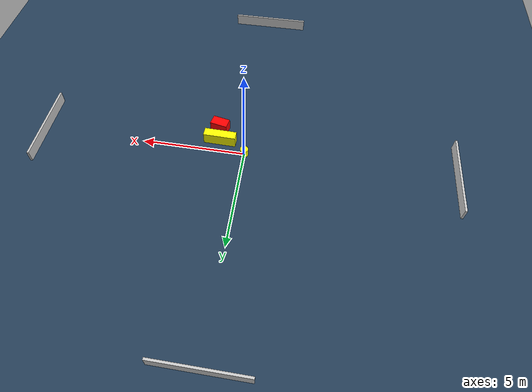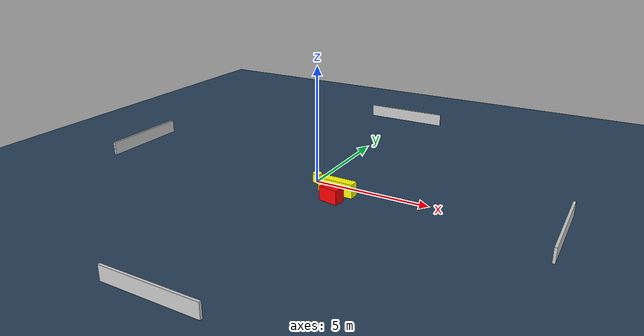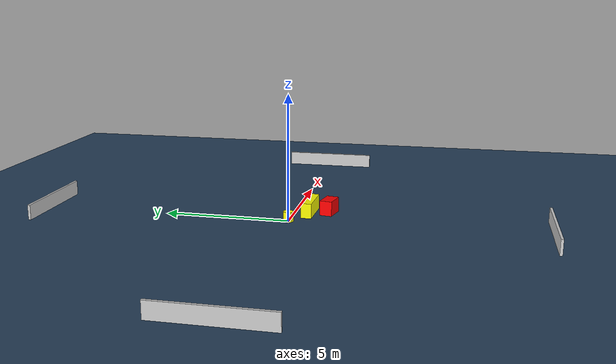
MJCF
<?xml version="1.0" ?>
<mujoco model="generated_environment">
  <option timestep="0.01" integrator="RK4" cone="elliptic"/>
  <default>
    <geom density="1"/>
  </default>
  <asset>
    <texture builtin="gradient" height="3072" name="skybox" rgb1="0.3 0.5 0.7" rgb2="0 0 0" type="skybox" width="512"/>
    <texture builtin="checker" height="300" name="groundplane" rgb1="0.2 0.3 0.4" rgb2="0.1 0.2 0.3" type="2d" width="300"/>
    <material name="groundplane" reflectance="0.2" texrepeat="5 5" texture="groundplane"/>
  </asset>
  <worldbody>
    <light dir="0 0 -1" directional="true" pos="0 0 1.5"/>
    <geom condim="3" friction="0.5 0.005 0.001" material="groundplane" name="floor" pos="0 0 0" size="0 0 0.05" type="plane"/>
    <body name="walls">
      <geom name="wall_1" condim="4" pos="-10.0 0.0 0.3" rgba="0.800000011920929 0.800000011920929 0.800000011920929 1.0" size="0.05 2.0 0.3" type="box"/>
      <geom name="wall_2" condim="4" pos="10.0 0.0 0.3" rgba="0.800000011920929 0.800000011920929 0.800000011920929 1.0" size="0.05 2.0 0.3" type="box"/>
      <geom name="wall_3" condim="4" pos="0.0 -10.0 0.3" rgba="0.800000011920929 0.800000011920929 0.800000011920929 1.0" size="2.0 0.05 0.3" type="box"/>
      <geom name="wall_4" condim="4" pos="0.0 10.0 0.3" rgba="0.800000011920929 0.800000011920929 0.800000011920929 1.0" size="2.0 0.05 0.3" type="box"/>
    </body>
    <body name="robot">
      <joint name="joint_x" type="slide" pos="0 0 0" axis="1 0 0"/>
      <joint name="joint_y" type="slide" pos="0 0 0" axis="0 1 0"/>
      <geom name="robot" type="cylinder" pos="0.0 0.0 0.2" size="0.2 0.2 0.0" mass="5.0" friction="1.0 0.005 0.0001" condim="4" rgba="1.0 1.0 0.0 1.0"/>
    </body>
    <body name="obstacle_1_movable">
      <geom name="obstacle_1_movable" condim="4" pos="1.287734453203929 -0.6169239947256416 0.3" euler="0 0 358.43641486508693" friction="0.0 0.005 0.001" rgba="1.0 1.0 0.0 1.0" size="0.7824891421361322 0.2155879283673446 0.3" type="box" mass="0.1"/>
      <joint type="free"/>
    </body>
    <body name="obstacle_2_static">
      <geom name="obstacle_2_static" condim="4" pos="1.4302945809086187 -1.3822560295117396 0.3" euler="0 0 348.4355552028109" friction="0.0 0.005 0.001" rgba="1.0 0.0 0.0 1.0" size="0.42141314219739906 0.24833130805349507 0.3" type="box"/>
    </body>
  </worldbody>
  <actuator>
    <motor name="actuator_x" joint="joint_x" gear="1" ctrlrange="-1 1"/>
    <motor name="actuator_y" joint="joint_y" gear="1" ctrlrange="-1 1"/>
  </actuator>
</mujoco>
